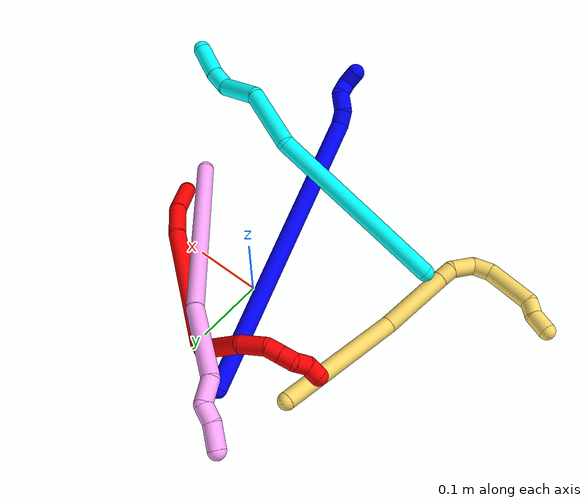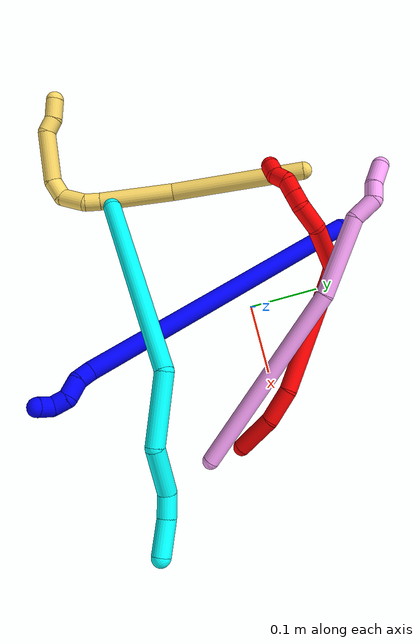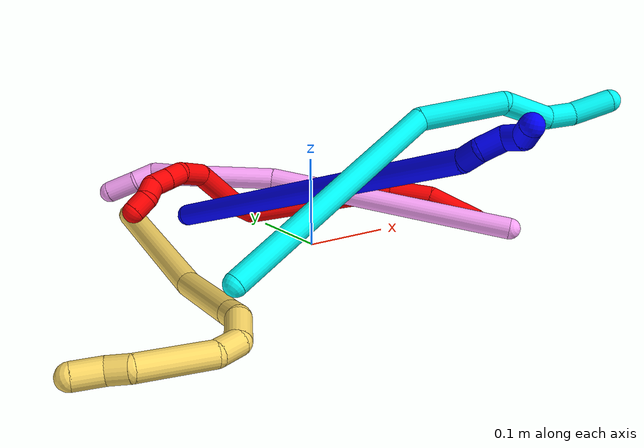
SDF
<sdf version="1.7">
 <world name="default">
  <plugin name="TubeGeneratorPlugin" filename="libtube_generator_plugin.so"/>
  <model name="photoneo_s_sensor">
   <static>1</static>
   <pose>0 0 2 1.57079 1.57079 3.14159</pose>
   <link name="link">
    <inertial><mass>0.1</mass></inertial>
    <sensor name="sensor" type="depth">
     <update_rate>30</update_rate>
     <camera>
      <horizontal_fov>1.22</horizontal_fov>
      <image><width>1920</width><height>1200</height><format>B8G8R8</format></image>
      <clip><near>0.1</near><far>4</far></clip>
      <depth_camera><output>points</output></depth_camera>
     </camera>
     <plugin name="camera_plugin" filename="libgazebo_ros_depth_camera.so">
      <baseline>0.2</baseline>
      <alwaysOn>1</alwaysOn>
      <updateRate>0.0</updateRate>
      <cameraName>camera_ir</cameraName>
      <imageTopicName>/camera/color/image_raw</imageTopicName>
      <cameraInfoTopicName>/camera/color/camera_info</cameraInfoTopicName>
      <depthImageTopicName>/camera/depth/image_raw</depthImageTopicName>
      <depthImageCameraInfoTopicName>/camera/depth/camera_info</depthImageCameraInfoTopicName>
      <pointCloudTopicName>/camera/depth/points</pointCloudTopicName>
      <frameName>fr_optical</frameName>
      <pointCloudCutoff>0.1</pointCloudCutoff>
      <pointCloudCutoffMax>2.0</pointCloudCutoffMax>
      <distortionK1>0</distortionK1>
      <distortionK2>0</distortionK2>
      <distortionK3>0</distortionK3>
      <distortionT1>0</distortionT1>
      <distortionT2>0</distortionT2>
      <CxPrime>0</CxPrime>
      <Cx>0</Cx>
      <Cy>0</Cy>
      <focalLength>0</focalLength>
      <hackBaseline>0</hackBaseline>
     </plugin>
    </sensor>
   </link>
  </model>
  <gravity>0 0 -9.8</gravity>
  <magnetic_field>6e-06 2.3e-05 -4.2e-05</magnetic_field>
  <atmosphere type="adiabatic"/>
  <physics name="default_physics" default="0" type="ode">
   <max_step_size>0.003</max_step_size>
   <real_time_factor>1</real_time_factor>
   <real_time_update_rate>1000</real_time_update_rate>
   <max_contacts>10000</max_contacts>
   <ode>
    <solver>
     <type>quick</type>
     <iters>100</iters>
     <sor>1.3</sor>
     <use_dynamic_moi_rescaling>0</use_dynamic_moi_rescaling>
    </solver>
    <constraints>
     <contact_max_correcting_vel>0</contact_max_correcting_vel>
     <contact_surface_layer>0.001</contact_surface_layer>
     <cfm>0</cfm>
     <erp>0.2</erp>
    </constraints>
   </ode>
  </physics>
  <scene><ambient>0.4 0.4 0.4 1</ambient><background>0.7 0.7 0.7 1</background><shadows>0</shadows></scene>
  <audio><device>default</device></audio>
  <spherical_coordinates>
   <surface_model>EARTH_WGS84</surface_model>
   <latitude_deg>0</latitude_deg>
   <longitude_deg>0</longitude_deg>
   <elevation>0</elevation>
   <heading_deg>0</heading_deg>
  </spherical_coordinates>
  <model name="bin">
   <static>1</static>
   <link name="bottom">
    <collision name="collision-bottom">
     <pose>0 0 -0.01 0 -0 0</pose>
     <geometry><box><size>0.8 0.6 0.02</size></box></geometry>
     <surface>
      <friction><ode><mu>100</mu><mu2>100</mu2></ode></friction>
      <contact><collide_bitmask>65535</collide_bitmask></contact>
     </surface>
    </collision>
   </link>
   <link name="west_wall">
    <collision name="collision-west_wall">
     <pose>-0.41 0 0.1 0 -0 0</pose>
     <geometry><box><size>0.02 0.6 0.2</size></box></geometry>
     <surface>
      <friction><ode><mu>100</mu><mu2>100</mu2></ode></friction>
      <contact><collide_bitmask>65535</collide_bitmask></contact>
     </surface>
    </collision>
   </link>
   <link name="east_wall">
    <collision name="collision-east_wall">
     <pose>0.41 0 0.1 0 -0 0</pose>
     <geometry><box><size>0.02 0.6 0.2</size></box></geometry>
     <surface>
      <friction><ode><mu>100</mu><mu2>100</mu2></ode></friction>
      <contact><collide_bitmask>65535</collide_bitmask></contact>
     </surface>
    </collision>
   </link>
   <link name="south_wall">
    <collision name="collision-south_wall">
     <pose>0 -0.31 0.1 0 -0 0</pose>
     <geometry><box><size>0.8 0.02 0.2</size></box></geometry>
     <surface>
      <friction><ode><mu>100</mu><mu2>100</mu2></ode></friction>
      <contact><collide_bitmask>65535</collide_bitmask></contact>
     </surface>
    </collision>
   </link>
   <link name="north_wall">
    <collision name="collision-north_wall">
     <pose>0 0.31 0.1 0 -0 0</pose>
     <geometry><box><size>0.8 0.02 0.2</size></box></geometry>
     <surface>
      <friction><ode><mu>100</mu><mu2>100</mu2></ode></friction>
      <contact><collide_bitmask>65535</collide_bitmask></contact>
     </surface>
    </collision>
   </link>
  </model>
  <model name="1">
   <static>0</static>
   <link name="1">
    <collision name="collision-cylinder-e_1_1_4">
     <pose>0.045936 -0.171164 0.105301 1.01927 0.224723 0.125957</pose>
     <geometry><cylinder><radius>0.0125</radius><length>0.412289</length></cylinder></geometry>
     <surface>
      <friction><ode><mu>1.16</mu><mu2>1.16</mu2><slip1>0</slip1><slip2>0</slip2></ode></friction>
      <contact><ode><kp>1e+06</kp><kd>1</kd><max_vel>0</max_vel><min_depth>0.001</min_depth></ode></contact>
     </surface>
    </collision>
    <visual name="visual-cylinder-e_1_1_4">
     <pose>0.045936 -0.171164 0.105301 1.01927 0.224723 0.125957</pose>
     <geometry><cylinder><radius>0.0125</radius><length>0.412289</length></cylinder></geometry>
     <material><ambient>0 0 1 1</ambient></material>
    </visual>
    <collision name="collision-cylinder-e_2_4_5">
     <pose>0.094335 -0.348674 0.218533 0.674814 0.237769 0.083761</pose>
     <geometry><cylinder><radius>0.0125</radius><length>0.020903</length></cylinder></geometry>
     <surface>
      <friction><ode><mu>1.16</mu><mu2>1.16</mu2><slip1>0</slip1><slip2>0</slip2></ode></friction>
      <contact><ode><kp>1e+06</kp><kd>1</kd><max_vel>0</max_vel><min_depth>0.001</min_depth></ode></contact>
     </surface>
    </collision>
    <visual name="visual-cylinder-e_2_4_5">
     <pose>0.094335 -0.348674 0.218533 0.674814 0.237769 0.083761</pose>
     <geometry><cylinder><radius>0.0125</radius><length>0.020903</length></cylinder></geometry>
     <material><ambient>0 0 1 1</ambient></material>
    </visual>
    <collision name="collision-cylinder-e_3_5_6">
     <pose>0.104622 -0.360701 0.235051 0.584516 0.649942 0.202048</pose>
     <geometry><cylinder><radius>0.0125</radius><length>0.025864</length></cylinder></geometry>
     <surface>
      <friction><ode><mu>1.16</mu><mu2>1.16</mu2><slip1>0</slip1><slip2>0</slip2></ode></friction>
      <contact><ode><kp>1e+06</kp><kd>1</kd><max_vel>0</max_vel><min_depth>0.001</min_depth></ode></contact>
     </surface>
    </collision>
    <visual name="visual-cylinder-e_3_5_6">
     <pose>0.104622 -0.360701 0.235051 0.584516 0.649942 0.202048</pose>
     <geometry><cylinder><radius>0.0125</radius><length>0.025864</length></cylinder></geometry>
     <material><ambient>0 0 1 1</ambient></material>
    </visual>
    <collision name="collision-cylinder-e_4_6_7">
     <pose>0.114769 -0.375552 0.247385 1.18284 0.230191 0.154975</pose>
     <geometry><cylinder><radius>0.0125</radius><length>0.020348</length></cylinder></geometry>
     <surface>
      <friction><ode><mu>1.16</mu><mu2>1.16</mu2><slip1>0</slip1><slip2>0</slip2></ode></friction>
      <contact><ode><kp>1e+06</kp><kd>1</kd><max_vel>0</max_vel><min_depth>0.001</min_depth></ode></contact>
     </surface>
    </collision>
    <visual name="visual-cylinder-e_4_6_7">
     <pose>0.114769 -0.375552 0.247385 1.18284 0.230191 0.154975</pose>
     <geometry><cylinder><radius>0.0125</radius><length>0.020348</length></cylinder></geometry>
     <material><ambient>0 0 1 1</ambient></material>
    </visual>
    <collision name="collision-cylinder-e_5_7_2">
     <pose>0.113686 -0.390613 0.258861 0.651262 -0.336923 -0.114725</pose>
     <geometry><cylinder><radius>0.0125</radius><length>0.020595</length></cylinder></geometry>
     <surface>
      <friction><ode><mu>1.16</mu><mu2>1.16</mu2><slip1>0</slip1><slip2>0</slip2></ode></friction>
      <contact><ode><kp>1e+06</kp><kd>1</kd><max_vel>0</max_vel><min_depth>0.001</min_depth></ode></contact>
     </surface>
    </collision>
    <visual name="visual-cylinder-e_5_7_2">
     <pose>0.113686 -0.390613 0.258861 0.651262 -0.336923 -0.114725</pose>
     <geometry><cylinder><radius>0.0125</radius><length>0.020595</length></cylinder></geometry>
     <material><ambient>0 0 1 1</ambient></material>
    </visual>
    <collision name="collision-sphere-2">
     <pose>0.110282 -0.396504 0.26659 0 -0 0</pose>
     <geometry><sphere><radius>0.0125</radius></sphere></geometry>
     <surface>
      <friction><ode><mu>1.16</mu><mu2>1.16</mu2><slip1>0</slip1><slip2>0</slip2></ode></friction>
      <contact><ode><kp>1e+06</kp><kd>1</kd><max_vel>0</max_vel><min_depth>0.001</min_depth></ode></contact>
     </surface>
    </collision>
    <visual name="visual-sphere-2">
     <pose>0.110282 -0.396504 0.26659 0 -0 0</pose>
     <geometry><sphere><radius>0.0125</radius></sphere></geometry>
     <material><ambient>0 0 1 1</ambient></material>
    </visual>
    <collision name="collision-sphere-7">
     <pose>0.117091 -0.384721 0.251132 0 -0 0</pose>
     <geometry><sphere><radius>0.0125</radius></sphere></geometry>
     <surface>
      <friction><ode><mu>1.16</mu><mu2>1.16</mu2><slip1>0</slip1><slip2>0</slip2></ode></friction>
      <contact><ode><kp>1e+06</kp><kd>1</kd><max_vel>0</max_vel><min_depth>0.001</min_depth></ode></contact>
     </surface>
    </collision>
    <visual name="visual-sphere-7">
     <pose>0.117091 -0.384721 0.251132 0 -0 0</pose>
     <geometry><sphere><radius>0.0125</radius></sphere></geometry>
     <material><ambient>0 0 1 1</ambient></material>
    </visual>
    <collision name="collision-sphere-6">
     <pose>0.112448 -0.366382 0.243637 0 -0 0</pose>
     <geometry><sphere><radius>0.0125</radius></sphere></geometry>
     <surface>
      <friction><ode><mu>1.16</mu><mu2>1.16</mu2><slip1>0</slip1><slip2>0</slip2></ode></friction>
      <contact><ode><kp>1e+06</kp><kd>1</kd><max_vel>0</max_vel><min_depth>0.001</min_depth></ode></contact>
     </surface>
    </collision>
    <visual name="visual-sphere-6">
     <pose>0.112448 -0.366382 0.243637 0 -0 0</pose>
     <geometry><sphere><radius>0.0125</radius></sphere></geometry>
     <material><ambient>0 0 1 1</ambient></material>
    </visual>
    <collision name="collision-sphere-5">
     <pose>0.096796 -0.35502 0.226465 0 -0 0</pose>
     <geometry><sphere><radius>0.0125</radius></sphere></geometry>
     <surface>
      <friction><ode><mu>1.16</mu><mu2>1.16</mu2><slip1>0</slip1><slip2>0</slip2></ode></friction>
      <contact><ode><kp>1e+06</kp><kd>1</kd><max_vel>0</max_vel><min_depth>0.001</min_depth></ode></contact>
     </surface>
    </collision>
    <visual name="visual-sphere-5">
     <pose>0.096796 -0.35502 0.226465 0 -0 0</pose>
     <geometry><sphere><radius>0.0125</radius></sphere></geometry>
     <material><ambient>0 0 1 1</ambient></material>
    </visual>
    <collision name="collision-sphere-1">
     <geometry><sphere><radius>0.0125</radius></sphere></geometry>
     <surface>
      <friction><ode><mu>1.16</mu><mu2>1.16</mu2><slip1>0</slip1><slip2>0</slip2></ode></friction>
      <contact><ode><kp>1e+06</kp><kd>1</kd><max_vel>0</max_vel><min_depth>0.001</min_depth></ode></contact>
     </surface>
    </collision>
    <visual name="visual-sphere-1">
     <geometry><sphere><radius>0.0125</radius></sphere></geometry>
     <material><ambient>0 0 1 1</ambient></material>
    </visual>
    <collision name="collision-sphere-4">
     <pose>0.091873 -0.342328 0.210602 0 -0 0</pose>
     <geometry><sphere><radius>0.0125</radius></sphere></geometry>
     <surface>
      <friction><ode><mu>1.16</mu><mu2>1.16</mu2><slip1>0</slip1><slip2>0</slip2></ode></friction>
      <contact><ode><kp>1e+06</kp><kd>1</kd><max_vel>0</max_vel><min_depth>0.001</min_depth></ode></contact>
     </surface>
    </collision>
    <visual name="visual-sphere-4">
     <pose>0.091873 -0.342328 0.210602 0 -0 0</pose>
     <geometry><sphere><radius>0.0125</radius></sphere></geometry>
     <material><ambient>0 0 1 1</ambient></material>
    </visual>
    <inertial>
     <pose>0.056587 -0.205747 0.128854 0 -0 0</pose>
     <mass>0.5</mass>
     <inertia>
      <ixx>0.006396</ixx>
      <ixy>0</ixy>
      <ixz>0</ixz>
      <iyy>0.003876</iyy>
      <iyz>0</iyz>
      <izz>0.003581</izz>
     </inertia>
    </inertial>
   </link>
   <pose>-0.07746 0.154571 0.011491 0.186928 0.157801 -0.029826</pose>
  </model>
  <model name="2">
   <static>0</static>
   <link name="2">
    <collision name="collision-cylinder-e_1_1_4">
     <pose>-0.000257 0.010884 0.028998 -0.359063 -0.008298 0.001506</pose>
     <geometry><cylinder><radius>0.0125</radius><length>0.061949</length></cylinder></geometry>
     <surface>
      <friction><ode><mu>1.16</mu><mu2>1.16</mu2><slip1>0</slip1><slip2>0</slip2></ode></friction>
      <contact><ode><kp>1e+06</kp><kd>1</kd><max_vel>0</max_vel><min_depth>0.001</min_depth></ode></contact>
     </surface>
    </collision>
    <visual name="visual-cylinder-e_1_1_4">
     <pose>-0.000257 0.010884 0.028998 -0.359063 -0.008298 0.001506</pose>
     <geometry><cylinder><radius>0.0125</radius><length>0.061949</length></cylinder></geometry>
     <material><ambient>1 0 0 1</ambient></material>
    </visual>
    <collision name="collision-cylinder-e_2_4_5">
     <pose>-0.008454 0.031439 0.079686 -0.419404 -0.322665 0.069247</pose>
     <geometry><cylinder><radius>0.0125</radius><length>0.050081</length></cylinder></geometry>
     <surface>
      <friction><ode><mu>1.16</mu><mu2>1.16</mu2><slip1>0</slip1><slip2>0</slip2></ode></friction>
      <contact><ode><kp>1e+06</kp><kd>1</kd><max_vel>0</max_vel><min_depth>0.001</min_depth></ode></contact>
     </surface>
    </collision>
    <visual name="visual-cylinder-e_2_4_5">
     <pose>-0.008454 0.031439 0.079686 -0.419404 -0.322665 0.069247</pose>
     <geometry><cylinder><radius>0.0125</radius><length>0.050081</length></cylinder></geometry>
     <material><ambient>1 0 0 1</ambient></material>
    </visual>
    <collision name="collision-cylinder-e_3_5_6">
     <pose>-0.067409 0.076868 0.160927 -0.540768 -0.633456 0.181195</pose>
     <geometry><cylinder><radius>0.0125</radius><length>0.172365</length></cylinder></geometry>
     <surface>
      <friction><ode><mu>1.16</mu><mu2>1.16</mu2><slip1>0</slip1><slip2>0</slip2></ode></friction>
      <contact><ode><kp>1e+06</kp><kd>1</kd><max_vel>0</max_vel><min_depth>0.001</min_depth></ode></contact>
     </surface>
    </collision>
    <visual name="visual-cylinder-e_3_5_6">
     <pose>-0.067409 0.076868 0.160927 -0.540768 -0.633456 0.181195</pose>
     <geometry><cylinder><radius>0.0125</radius><length>0.172365</length></cylinder></geometry>
     <material><ambient>1 0 0 1</ambient></material>
    </visual>
    <collision name="collision-cylinder-e_4_6_7">
     <pose>-0.120674 0.111767 0.23021 0.088097 -0.226425 -0.010023</pose>
     <geometry><cylinder><radius>0.0125</radius><length>0.020054</length></cylinder></geometry>
     <surface>
      <friction><ode><mu>1.16</mu><mu2>1.16</mu2><slip1>0</slip1><slip2>0</slip2></ode></friction>
      <contact><ode><kp>1e+06</kp><kd>1</kd><max_vel>0</max_vel><min_depth>0.001</min_depth></ode></contact>
     </surface>
    </collision>
    <visual name="visual-cylinder-e_4_6_7">
     <pose>-0.120674 0.111767 0.23021 0.088097 -0.226425 -0.010023</pose>
     <geometry><cylinder><radius>0.0125</radius><length>0.020054</length></cylinder></geometry>
     <material><ambient>1 0 0 1</ambient></material>
    </visual>
    <collision name="collision-cylinder-e_5_7_8">
     <pose>-0.130965 0.085162 0.267723 0.747409 -0.20919 -0.082284</pose>
     <geometry><cylinder><radius>0.0125</radius><length>0.077437</length></cylinder></geometry>
     <surface>
      <friction><ode><mu>1.16</mu><mu2>1.16</mu2><slip1>0</slip1><slip2>0</slip2></ode></friction>
      <contact><ode><kp>1e+06</kp><kd>1</kd><max_vel>0</max_vel><min_depth>0.001</min_depth></ode></contact>
     </surface>
    </collision>
    <visual name="visual-cylinder-e_5_7_8">
     <pose>-0.130965 0.085162 0.267723 0.747409 -0.20919 -0.082284</pose>
     <geometry><cylinder><radius>0.0125</radius><length>0.077437</length></cylinder></geometry>
     <material><ambient>1 0 0 1</ambient></material>
    </visual>
    <collision name="collision-cylinder-e_6_8_9">
     <pose>-0.150104 0.047519 0.304554 0.920436 -0.638592 -0.32489</pose>
     <geometry><cylinder><radius>0.0125</radius><length>0.037239</length></cylinder></geometry>
     <surface>
      <friction><ode><mu>1.16</mu><mu2>1.16</mu2><slip1>0</slip1><slip2>0</slip2></ode></friction>
      <contact><ode><kp>1e+06</kp><kd>1</kd><max_vel>0</max_vel><min_depth>0.001</min_depth></ode></contact>
     </surface>
    </collision>
    <visual name="visual-cylinder-e_6_8_9">
     <pose>-0.150104 0.047519 0.304554 0.920436 -0.638592 -0.32489</pose>
     <geometry><cylinder><radius>0.0125</radius><length>0.037239</length></cylinder></geometry>
     <material><ambient>1 0 0 1</ambient></material>
    </visual>
    <collision name="collision-cylinder-e_7_9_10">
     <pose>-0.170246 0.032861 0.317388 0.630274 -1.09314 -0.391592</pose>
     <geometry><cylinder><radius>0.0125</radius><length>0.020366</length></cylinder></geometry>
     <surface>
      <friction><ode><mu>1.16</mu><mu2>1.16</mu2><slip1>0</slip1><slip2>0</slip2></ode></friction>
      <contact><ode><kp>1e+06</kp><kd>1</kd><max_vel>0</max_vel><min_depth>0.001</min_depth></ode></contact>
     </surface>
    </collision>
    <visual name="visual-cylinder-e_7_9_10">
     <pose>-0.170246 0.032861 0.317388 0.630274 -1.09314 -0.391592</pose>
     <geometry><cylinder><radius>0.0125</radius><length>0.020366</length></cylinder></geometry>
     <material><ambient>1 0 0 1</ambient></material>
    </visual>
    <collision name="collision-cylinder-e_8_10_11">
     <pose>-0.188247 0.027369 0.324975 0.622949 -1.08889 -0.385048</pose>
     <geometry><cylinder><radius>0.0125</radius><length>0.02022</length></cylinder></geometry>
     <surface>
      <friction><ode><mu>1.16</mu><mu2>1.16</mu2><slip1>0</slip1><slip2>0</slip2></ode></friction>
      <contact><ode><kp>1e+06</kp><kd>1</kd><max_vel>0</max_vel><min_depth>0.001</min_depth></ode></contact>
     </surface>
    </collision>
    <visual name="visual-cylinder-e_8_10_11">
     <pose>-0.188247 0.027369 0.324975 0.622949 -1.08889 -0.385048</pose>
     <geometry><cylinder><radius>0.0125</radius><length>0.02022</length></cylinder></geometry>
     <material><ambient>1 0 0 1</ambient></material>
    </visual>
    <collision name="collision-cylinder-e_9_11_12">
     <pose>-0.206426 0.021173 0.326758 2.09947 -1.16058 -1.70335</pose>
     <geometry><cylinder><radius>0.0125</radius><length>0.020108</length></cylinder></geometry>
     <surface>
      <friction><ode><mu>1.16</mu><mu2>1.16</mu2><slip1>0</slip1><slip2>0</slip2></ode></friction>
      <contact><ode><kp>1e+06</kp><kd>1</kd><max_vel>0</max_vel><min_depth>0.001</min_depth></ode></contact>
     </surface>
    </collision>
    <visual name="visual-cylinder-e_9_11_12">
     <pose>-0.206426 0.021173 0.326758 2.09947 -1.16058 -1.70335</pose>
     <geometry><cylinder><radius>0.0125</radius><length>0.020108</length></cylinder></geometry>
     <material><ambient>1 0 0 1</ambient></material>
    </visual>
    <collision name="collision-cylinder-e_10_12_2">
     <pose>-0.225642 0.018543 0.325834 -0.648606 -1.43381 0.570061</pose>
     <geometry><cylinder><radius>0.0125</radius><length>0.020182</length></cylinder></geometry>
     <surface>
      <friction><ode><mu>1.16</mu><mu2>1.16</mu2><slip1>0</slip1><slip2>0</slip2></ode></friction>
      <contact><ode><kp>1e+06</kp><kd>1</kd><max_vel>0</max_vel><min_depth>0.001</min_depth></ode></contact>
     </surface>
    </collision>
    <visual name="visual-cylinder-e_10_12_2">
     <pose>-0.225642 0.018543 0.325834 -0.648606 -1.43381 0.570061</pose>
     <geometry><cylinder><radius>0.0125</radius><length>0.020182</length></cylinder></geometry>
     <material><ambient>1 0 0 1</ambient></material>
    </visual>
    <collision name="collision-sphere-2">
     <pose>-0.235638 0.019375 0.326932 0 -0 0</pose>
     <geometry><sphere><radius>0.0125</radius></sphere></geometry>
     <surface>
      <friction><ode><mu>1.16</mu><mu2>1.16</mu2><slip1>0</slip1><slip2>0</slip2></ode></friction>
      <contact><ode><kp>1e+06</kp><kd>1</kd><max_vel>0</max_vel><min_depth>0.001</min_depth></ode></contact>
     </surface>
    </collision>
    <visual name="visual-sphere-2">
     <pose>-0.235638 0.019375 0.326932 0 -0 0</pose>
     <geometry><sphere><radius>0.0125</radius></sphere></geometry>
     <material><ambient>1 0 0 1</ambient></material>
    </visual>
    <collision name="collision-sphere-12">
     <pose>-0.215646 0.017711 0.324736 0 -0 0</pose>
     <geometry><sphere><radius>0.0125</radius></sphere></geometry>
     <surface>
      <friction><ode><mu>1.16</mu><mu2>1.16</mu2><slip1>0</slip1><slip2>0</slip2></ode></friction>
      <contact><ode><kp>1e+06</kp><kd>1</kd><max_vel>0</max_vel><min_depth>0.001</min_depth></ode></contact>
     </surface>
    </collision>
    <visual name="visual-sphere-12">
     <pose>-0.215646 0.017711 0.324736 0 -0 0</pose>
     <geometry><sphere><radius>0.0125</radius></sphere></geometry>
     <material><ambient>1 0 0 1</ambient></material>
    </visual>
    <collision name="collision-sphere-11">
     <pose>-0.197206 0.024635 0.32878 0 -0 0</pose>
     <geometry><sphere><radius>0.0125</radius></sphere></geometry>
     <surface>
      <friction><ode><mu>1.16</mu><mu2>1.16</mu2><slip1>0</slip1><slip2>0</slip2></ode></friction>
      <contact><ode><kp>1e+06</kp><kd>1</kd><max_vel>0</max_vel><min_depth>0.001</min_depth></ode></contact>
     </surface>
    </collision>
    <visual name="visual-sphere-11">
     <pose>-0.197206 0.024635 0.32878 0 -0 0</pose>
     <geometry><sphere><radius>0.0125</radius></sphere></geometry>
     <material><ambient>1 0 0 1</ambient></material>
    </visual>
    <collision name="collision-sphere-10">
     <pose>-0.179289 0.030103 0.321169 0 -0 0</pose>
     <geometry><sphere><radius>0.0125</radius></sphere></geometry>
     <surface>
      <friction><ode><mu>1.16</mu><mu2>1.16</mu2><slip1>0</slip1><slip2>0</slip2></ode></friction>
      <contact><ode><kp>1e+06</kp><kd>1</kd><max_vel>0</max_vel><min_depth>0.001</min_depth></ode></contact>
     </surface>
    </collision>
    <visual name="visual-sphere-10">
     <pose>-0.179289 0.030103 0.321169 0 -0 0</pose>
     <geometry><sphere><radius>0.0125</radius></sphere></geometry>
     <material><ambient>1 0 0 1</ambient></material>
    </visual>
    <collision name="collision-sphere-9">
     <pose>-0.161203 0.03562 0.313606 0 -0 0</pose>
     <geometry><sphere><radius>0.0125</radius></sphere></geometry>
     <surface>
      <friction><ode><mu>1.16</mu><mu2>1.16</mu2><slip1>0</slip1><slip2>0</slip2></ode></friction>
      <contact><ode><kp>1e+06</kp><kd>1</kd><max_vel>0</max_vel><min_depth>0.001</min_depth></ode></contact>
     </surface>
    </collision>
    <visual name="visual-sphere-9">
     <pose>-0.161203 0.03562 0.313606 0 -0 0</pose>
     <geometry><sphere><radius>0.0125</radius></sphere></geometry>
     <material><ambient>1 0 0 1</ambient></material>
    </visual>
    <collision name="collision-sphere-4">
     <pose>-0.000514 0.021768 0.057997 0 -0 0</pose>
     <geometry><sphere><radius>0.0125</radius></sphere></geometry>
     <surface>
      <friction><ode><mu>1.16</mu><mu2>1.16</mu2><slip1>0</slip1><slip2>0</slip2></ode></friction>
      <contact><ode><kp>1e+06</kp><kd>1</kd><max_vel>0</max_vel><min_depth>0.001</min_depth></ode></contact>
     </surface>
    </collision>
    <visual name="visual-sphere-4">
     <pose>-0.000514 0.021768 0.057997 0 -0 0</pose>
     <geometry><sphere><radius>0.0125</radius></sphere></geometry>
     <material><ambient>1 0 0 1</ambient></material>
    </visual>
    <collision name="collision-sphere-1">
     <geometry><sphere><radius>0.0125</radius></sphere></geometry>
     <surface>
      <friction><ode><mu>1.16</mu><mu2>1.16</mu2><slip1>0</slip1><slip2>0</slip2></ode></friction>
      <contact><ode><kp>1e+06</kp><kd>1</kd><max_vel>0</max_vel><min_depth>0.001</min_depth></ode></contact>
     </surface>
    </collision>
    <visual name="visual-sphere-1">
     <geometry><sphere><radius>0.0125</radius></sphere></geometry>
     <material><ambient>1 0 0 1</ambient></material>
    </visual>
    <collision name="collision-sphere-8">
     <pose>-0.139006 0.059417 0.295502 0 -0 0</pose>
     <geometry><sphere><radius>0.0125</radius></sphere></geometry>
     <surface>
      <friction><ode><mu>1.16</mu><mu2>1.16</mu2><slip1>0</slip1><slip2>0</slip2></ode></friction>
      <contact><ode><kp>1e+06</kp><kd>1</kd><max_vel>0</max_vel><min_depth>0.001</min_depth></ode></contact>
     </surface>
    </collision>
    <visual name="visual-sphere-8">
     <pose>-0.139006 0.059417 0.295502 0 -0 0</pose>
     <geometry><sphere><radius>0.0125</radius></sphere></geometry>
     <material><ambient>1 0 0 1</ambient></material>
    </visual>
    <collision name="collision-sphere-5">
     <pose>-0.016394 0.041109 0.101376 0 -0 0</pose>
     <geometry><sphere><radius>0.0125</radius></sphere></geometry>
     <surface>
      <friction><ode><mu>1.16</mu><mu2>1.16</mu2><slip1>0</slip1><slip2>0</slip2></ode></friction>
      <contact><ode><kp>1e+06</kp><kd>1</kd><max_vel>0</max_vel><min_depth>0.001</min_depth></ode></contact>
     </surface>
    </collision>
    <visual name="visual-sphere-5">
     <pose>-0.016394 0.041109 0.101376 0 -0 0</pose>
     <geometry><sphere><radius>0.0125</radius></sphere></geometry>
     <material><ambient>1 0 0 1</ambient></material>
    </visual>
    <collision name="collision-sphere-6">
     <pose>-0.118423 0.112626 0.220477 0 -0 0</pose>
     <geometry><sphere><radius>0.0125</radius></sphere></geometry>
     <surface>
      <friction><ode><mu>1.16</mu><mu2>1.16</mu2><slip1>0</slip1><slip2>0</slip2></ode></friction>
      <contact><ode><kp>1e+06</kp><kd>1</kd><max_vel>0</max_vel><min_depth>0.001</min_depth></ode></contact>
     </surface>
    </collision>
    <visual name="visual-sphere-6">
     <pose>-0.118423 0.112626 0.220477 0 -0 0</pose>
     <geometry><sphere><radius>0.0125</radius></sphere></geometry>
     <material><ambient>1 0 0 1</ambient></material>
    </visual>
    <collision name="collision-sphere-7">
     <pose>-0.122925 0.110907 0.239944 0 -0 0</pose>
     <geometry><sphere><radius>0.0125</radius></sphere></geometry>
     <surface>
      <friction><ode><mu>1.16</mu><mu2>1.16</mu2><slip1>0</slip1><slip2>0</slip2></ode></friction>
      <contact><ode><kp>1e+06</kp><kd>1</kd><max_vel>0</max_vel><min_depth>0.001</min_depth></ode></contact>
     </surface>
    </collision>
    <visual name="visual-sphere-7">
     <pose>-0.122925 0.110907 0.239944 0 -0 0</pose>
     <geometry><sphere><radius>0.0125</radius></sphere></geometry>
     <material><ambient>1 0 0 1</ambient></material>
    </visual>
    <inertial>
     <pose>-0.092375 0.056253 0.192792 0 -0 0</pose>
     <mass>0.5</mass>
     <inertia>
      <ixx>0.000465</ixx>
      <ixy>0</ixy>
      <ixz>0</ixz>
      <iyy>0.000523</iyy>
      <iyz>0</iyz>
      <izz>0.000144</izz>
     </inertia>
    </inertial>
   </link>
   <pose>0.19384 -0.065754 0.011532 -0.723696 -0.653508 0.258467</pose>
  </model>
  <model name="3">
   <static>0</static>
   <link name="3">
    <collision name="collision-cylinder-e_1_1_4">
     <pose>0.020537 -0.010888 0.130511 0.083232 0.15555 0.00649</pose>
     <geometry><cylinder><radius>0.0125</radius><length>0.265129</length></cylinder></geometry>
     <surface>
      <friction><ode><mu>1.16</mu><mu2>1.16</mu2><slip1>0</slip1><slip2>0</slip2></ode></friction>
      <contact><ode><kp>1e+06</kp><kd>1</kd><max_vel>0</max_vel><min_depth>0.001</min_depth></ode></contact>
     </surface>
    </collision>
    <visual name="visual-cylinder-e_1_1_4">
     <pose>0.020537 -0.010888 0.130511 0.083232 0.15555 0.00649</pose>
     <geometry><cylinder><radius>0.0125</radius><length>0.265129</length></cylinder></geometry>
     <material><ambient>0.003922 1 0.996078 1</ambient></material>
    </visual>
    <collision name="collision-cylinder-e_2_4_5">
     <pose>0.064748 -0.041746 0.295451 0.525599 0.536562 0.147644</pose>
     <geometry><cylinder><radius>0.0125</radius><length>0.09262</length></cylinder></geometry>
     <surface>
      <friction><ode><mu>1.16</mu><mu2>1.16</mu2><slip1>0</slip1><slip2>0</slip2></ode></friction>
      <contact><ode><kp>1e+06</kp><kd>1</kd><max_vel>0</max_vel><min_depth>0.001</min_depth></ode></contact>
     </surface>
    </collision>
    <visual name="visual-cylinder-e_2_4_5">
     <pose>0.064748 -0.041746 0.295451 0.525599 0.536562 0.147644</pose>
     <geometry><cylinder><radius>0.0125</radius><length>0.09262</length></cylinder></geometry>
     <material><ambient>0.003922 1 0.996078 1</ambient></material>
    </visual>
    <collision name="collision-cylinder-e_3_5_6">
     <pose>0.115843 -0.061602 0.347714 -0.006391 0.994202 -0.003468</pose>
     <geometry><cylinder><radius>0.0125</radius><length>0.065422</length></cylinder></geometry>
     <surface>
      <friction><ode><mu>1.16</mu><mu2>1.16</mu2><slip1>0</slip1><slip2>0</slip2></ode></friction>
      <contact><ode><kp>1e+06</kp><kd>1</kd><max_vel>0</max_vel><min_depth>0.001</min_depth></ode></contact>
     </surface>
    </collision>
    <visual name="visual-cylinder-e_3_5_6">
     <pose>0.115843 -0.061602 0.347714 -0.006391 0.994202 -0.003468</pose>
     <geometry><cylinder><radius>0.0125</radius><length>0.065422</length></cylinder></geometry>
     <material><ambient>0.003922 1 0.996078 1</ambient></material>
    </visual>
    <collision name="collision-cylinder-e_4_6_7">
     <pose>0.152191 -0.066564 0.377193 0.411001 0.612409 0.131607</pose>
     <geometry><cylinder><radius>0.0125</radius><length>0.031054</length></cylinder></geometry>
     <surface>
      <friction><ode><mu>1.16</mu><mu2>1.16</mu2><slip1>0</slip1><slip2>0</slip2></ode></friction>
      <contact><ode><kp>1e+06</kp><kd>1</kd><max_vel>0</max_vel><min_depth>0.001</min_depth></ode></contact>
     </surface>
    </collision>
    <visual name="visual-cylinder-e_4_6_7">
     <pose>0.152191 -0.066564 0.377193 0.411001 0.612409 0.131607</pose>
     <geometry><cylinder><radius>0.0125</radius><length>0.031054</length></cylinder></geometry>
     <material><ambient>0.003922 1 0.996078 1</ambient></material>
    </visual>
    <collision name="collision-cylinder-e_5_7_2">
     <pose>0.169862 -0.082512 0.406983 0.539889 0.392073 0.109787</pose>
     <geometry><cylinder><radius>0.0125</radius><length>0.045775</length></cylinder></geometry>
     <surface>
      <friction><ode><mu>1.16</mu><mu2>1.16</mu2><slip1>0</slip1><slip2>0</slip2></ode></friction>
      <contact><ode><kp>1e+06</kp><kd>1</kd><max_vel>0</max_vel><min_depth>0.001</min_depth></ode></contact>
     </surface>
    </collision>
    <visual name="visual-cylinder-e_5_7_2">
     <pose>0.169862 -0.082512 0.406983 0.539889 0.392073 0.109787</pose>
     <geometry><cylinder><radius>0.0125</radius><length>0.045775</length></cylinder></geometry>
     <material><ambient>0.003922 1 0.996078 1</ambient></material>
    </visual>
    <collision name="collision-sphere-2">
     <pose>0.178607 -0.093385 0.425125 0 -0 0</pose>
     <geometry><sphere><radius>0.0125</radius></sphere></geometry>
     <surface>
      <friction><ode><mu>1.16</mu><mu2>1.16</mu2><slip1>0</slip1><slip2>0</slip2></ode></friction>
      <contact><ode><kp>1e+06</kp><kd>1</kd><max_vel>0</max_vel><min_depth>0.001</min_depth></ode></contact>
     </surface>
    </collision>
    <visual name="visual-sphere-2">
     <pose>0.178607 -0.093385 0.425125 0 -0 0</pose>
     <geometry><sphere><radius>0.0125</radius></sphere></geometry>
     <material><ambient>0.003922 1 0.996078 1</ambient></material>
    </visual>
    <collision name="collision-sphere-7">
     <pose>0.161116 -0.07164 0.388841 0 -0 0</pose>
     <geometry><sphere><radius>0.0125</radius></sphere></geometry>
     <surface>
      <friction><ode><mu>1.16</mu><mu2>1.16</mu2><slip1>0</slip1><slip2>0</slip2></ode></friction>
      <contact><ode><kp>1e+06</kp><kd>1</kd><max_vel>0</max_vel><min_depth>0.001</min_depth></ode></contact>
     </surface>
    </collision>
    <visual name="visual-sphere-7">
     <pose>0.161116 -0.07164 0.388841 0 -0 0</pose>
     <geometry><sphere><radius>0.0125</radius></sphere></geometry>
     <material><ambient>0.003922 1 0.996078 1</ambient></material>
    </visual>
    <collision name="collision-sphere-6">
     <pose>0.143265 -0.061488 0.365546 0 -0 0</pose>
     <geometry><sphere><radius>0.0125</radius></sphere></geometry>
     <surface>
      <friction><ode><mu>1.16</mu><mu2>1.16</mu2><slip1>0</slip1><slip2>0</slip2></ode></friction>
      <contact><ode><kp>1e+06</kp><kd>1</kd><max_vel>0</max_vel><min_depth>0.001</min_depth></ode></contact>
     </surface>
    </collision>
    <visual name="visual-sphere-6">
     <pose>0.143265 -0.061488 0.365546 0 -0 0</pose>
     <geometry><sphere><radius>0.0125</radius></sphere></geometry>
     <material><ambient>0.003922 1 0.996078 1</ambient></material>
    </visual>
    <collision name="collision-sphere-5">
     <pose>0.088421 -0.061716 0.329881 0 -0 0</pose>
     <geometry><sphere><radius>0.0125</radius></sphere></geometry>
     <surface>
      <friction><ode><mu>1.16</mu><mu2>1.16</mu2><slip1>0</slip1><slip2>0</slip2></ode></friction>
      <contact><ode><kp>1e+06</kp><kd>1</kd><max_vel>0</max_vel><min_depth>0.001</min_depth></ode></contact>
     </surface>
    </collision>
    <visual name="visual-sphere-5">
     <pose>0.088421 -0.061716 0.329881 0 -0 0</pose>
     <geometry><sphere><radius>0.0125</radius></sphere></geometry>
     <material><ambient>0.003922 1 0.996078 1</ambient></material>
    </visual>
    <collision name="collision-sphere-1">
     <geometry><sphere><radius>0.0125</radius></sphere></geometry>
     <surface>
      <friction><ode><mu>1.16</mu><mu2>1.16</mu2><slip1>0</slip1><slip2>0</slip2></ode></friction>
      <contact><ode><kp>1e+06</kp><kd>1</kd><max_vel>0</max_vel><min_depth>0.001</min_depth></ode></contact>
     </surface>
    </collision>
    <visual name="visual-sphere-1">
     <geometry><sphere><radius>0.0125</radius></sphere></geometry>
     <material><ambient>0.003922 1 0.996078 1</ambient></material>
    </visual>
    <collision name="collision-sphere-4">
     <pose>0.041075 -0.021776 0.261021 0 -0 0</pose>
     <geometry><sphere><radius>0.0125</radius></sphere></geometry>
     <surface>
      <friction><ode><mu>1.16</mu><mu2>1.16</mu2><slip1>0</slip1><slip2>0</slip2></ode></friction>
      <contact><ode><kp>1e+06</kp><kd>1</kd><max_vel>0</max_vel><min_depth>0.001</min_depth></ode></contact>
     </surface>
    </collision>
    <visual name="visual-sphere-4">
     <pose>0.041075 -0.021776 0.261021 0 -0 0</pose>
     <geometry><sphere><radius>0.0125</radius></sphere></geometry>
     <material><ambient>0.003922 1 0.996078 1</ambient></material>
    </visual>
    <inertial>
     <pose>0.063044 -0.033255 0.230116 0 -0 0</pose>
     <mass>0.5</mass>
     <inertia>
      <ixx>0.001664</ixx>
      <ixy>0</ixy>
      <ixz>0</ixz>
      <iyy>0.001671</iyy>
      <iyz>0</iyz>
      <izz>-0.000108</izz>
     </inertia>
    </inertial>
   </link>
   <pose>-0.186606 -0.154653 0.038423 -0.426423 0.8918 -0.288876</pose>
  </model>
  <model name="4">
   <static>0</static>
   <link name="4">
    <collision name="collision-cylinder-e_1_1_4">
     <pose>-0.064223 0.053898 0.118122 -0.428073 -0.459351 0.101554</pose>
     <geometry><cylinder><radius>0.0125</radius><length>0.289707</length></cylinder></geometry>
     <surface>
      <friction><ode><mu>1.16</mu><mu2>1.16</mu2><slip1>0</slip1><slip2>0</slip2></ode></friction>
      <contact><ode><kp>1e+06</kp><kd>1</kd><max_vel>0</max_vel><min_depth>0.001</min_depth></ode></contact>
     </surface>
    </collision>
    <visual name="visual-cylinder-e_1_1_4">
     <pose>-0.064223 0.053898 0.118122 -0.428073 -0.459351 0.101554</pose>
     <geometry><cylinder><radius>0.0125</radius><length>0.289707</length></cylinder></geometry>
     <material><ambient>1 0.65098 0.996078 1</ambient></material>
    </visual>
    <collision name="collision-cylinder-e_2_4_5">
     <pose>-0.146204 0.140254 0.27935 -0.645406 -0.317924 0.107113</pose>
     <geometry><cylinder><radius>0.0125</radius><length>0.113612</length></cylinder></geometry>
     <surface>
      <friction><ode><mu>1.16</mu><mu2>1.16</mu2><slip1>0</slip1><slip2>0</slip2></ode></friction>
      <contact><ode><kp>1e+06</kp><kd>1</kd><max_vel>0</max_vel><min_depth>0.001</min_depth></ode></contact>
     </surface>
    </collision>
    <visual name="visual-cylinder-e_2_4_5">
     <pose>-0.146204 0.140254 0.27935 -0.645406 -0.317924 0.107113</pose>
     <geometry><cylinder><radius>0.0125</radius><length>0.113612</length></cylinder></geometry>
     <material><ambient>1 0.65098 0.996078 1</ambient></material>
    </visual>
    <collision name="collision-cylinder-e_3_5_6">
     <pose>-0.169154 0.175585 0.339743 -0.164715 -0.288086 0.023944</pose>
     <geometry><cylinder><radius>0.0125</radius><length>0.036556</length></cylinder></geometry>
     <surface>
      <friction><ode><mu>1.16</mu><mu2>1.16</mu2><slip1>0</slip1><slip2>0</slip2></ode></friction>
      <contact><ode><kp>1e+06</kp><kd>1</kd><max_vel>0</max_vel><min_depth>0.001</min_depth></ode></contact>
     </surface>
    </collision>
    <visual name="visual-cylinder-e_3_5_6">
     <pose>-0.169154 0.175585 0.339743 -0.164715 -0.288086 0.023944</pose>
     <geometry><cylinder><radius>0.0125</radius><length>0.036556</length></cylinder></geometry>
     <material><ambient>1 0.65098 0.996078 1</ambient></material>
    </visual>
    <collision name="collision-cylinder-e_4_6_7">
     <pose>-0.172732 0.187565 0.365459 -0.824079 0.12942 -0.056628</pose>
     <geometry><cylinder><radius>0.0125</radius><length>0.025025</length></cylinder></geometry>
     <surface>
      <friction><ode><mu>1.16</mu><mu2>1.16</mu2><slip1>0</slip1><slip2>0</slip2></ode></friction>
      <contact><ode><kp>1e+06</kp><kd>1</kd><max_vel>0</max_vel><min_depth>0.001</min_depth></ode></contact>
     </surface>
    </collision>
    <visual name="visual-cylinder-e_4_6_7">
     <pose>-0.172732 0.187565 0.365459 -0.824079 0.12942 -0.056628</pose>
     <geometry><cylinder><radius>0.0125</radius><length>0.025025</length></cylinder></geometry>
     <material><ambient>1 0.65098 0.996078 1</ambient></material>
    </visual>
    <collision name="collision-cylinder-e_5_7_2">
     <pose>-0.169138 0.205701 0.388805 -0.54431 0.113015 -0.031571</pose>
     <geometry><cylinder><radius>0.0125</radius><length>0.035101</length></cylinder></geometry>
     <surface>
      <friction><ode><mu>1.16</mu><mu2>1.16</mu2><slip1>0</slip1><slip2>0</slip2></ode></friction>
      <contact><ode><kp>1e+06</kp><kd>1</kd><max_vel>0</max_vel><min_depth>0.001</min_depth></ode></contact>
     </surface>
    </collision>
    <visual name="visual-cylinder-e_5_7_2">
     <pose>-0.169138 0.205701 0.388805 -0.54431 0.113015 -0.031571</pose>
     <geometry><cylinder><radius>0.0125</radius><length>0.035101</length></cylinder></geometry>
     <material><ambient>1 0.65098 0.996078 1</ambient></material>
    </visual>
    <collision name="collision-sphere-2">
     <pose>-0.167159 0.214731 0.403723 0 -0 0</pose>
     <geometry><sphere><radius>0.0125</radius></sphere></geometry>
     <surface>
      <friction><ode><mu>1.16</mu><mu2>1.16</mu2><slip1>0</slip1><slip2>0</slip2></ode></friction>
      <contact><ode><kp>1e+06</kp><kd>1</kd><max_vel>0</max_vel><min_depth>0.001</min_depth></ode></contact>
     </surface>
    </collision>
    <visual name="visual-sphere-2">
     <pose>-0.167159 0.214731 0.403723 0 -0 0</pose>
     <geometry><sphere><radius>0.0125</radius></sphere></geometry>
     <material><ambient>1 0.65098 0.996078 1</ambient></material>
    </visual>
    <collision name="collision-sphere-7">
     <pose>-0.171117 0.196671 0.373886 0 -0 0</pose>
     <geometry><sphere><radius>0.0125</radius></sphere></geometry>
     <surface>
      <friction><ode><mu>1.16</mu><mu2>1.16</mu2><slip1>0</slip1><slip2>0</slip2></ode></friction>
      <contact><ode><kp>1e+06</kp><kd>1</kd><max_vel>0</max_vel><min_depth>0.001</min_depth></ode></contact>
     </surface>
    </collision>
    <visual name="visual-sphere-7">
     <pose>-0.171117 0.196671 0.373886 0 -0 0</pose>
     <geometry><sphere><radius>0.0125</radius></sphere></geometry>
     <material><ambient>1 0.65098 0.996078 1</ambient></material>
    </visual>
    <collision name="collision-sphere-6">
     <pose>-0.174347 0.178459 0.357031 0 -0 0</pose>
     <geometry><sphere><radius>0.0125</radius></sphere></geometry>
     <surface>
      <friction><ode><mu>1.16</mu><mu2>1.16</mu2><slip1>0</slip1><slip2>0</slip2></ode></friction>
      <contact><ode><kp>1e+06</kp><kd>1</kd><max_vel>0</max_vel><min_depth>0.001</min_depth></ode></contact>
     </surface>
    </collision>
    <visual name="visual-sphere-6">
     <pose>-0.174347 0.178459 0.357031 0 -0 0</pose>
     <geometry><sphere><radius>0.0125</radius></sphere></geometry>
     <material><ambient>1 0.65098 0.996078 1</ambient></material>
    </visual>
    <collision name="collision-sphere-5">
     <pose>-0.163961 0.172712 0.322456 0 -0 0</pose>
     <geometry><sphere><radius>0.0125</radius></sphere></geometry>
     <surface>
      <friction><ode><mu>1.16</mu><mu2>1.16</mu2><slip1>0</slip1><slip2>0</slip2></ode></friction>
      <contact><ode><kp>1e+06</kp><kd>1</kd><max_vel>0</max_vel><min_depth>0.001</min_depth></ode></contact>
     </surface>
    </collision>
    <visual name="visual-sphere-5">
     <pose>-0.163961 0.172712 0.322456 0 -0 0</pose>
     <geometry><sphere><radius>0.0125</radius></sphere></geometry>
     <material><ambient>1 0.65098 0.996078 1</ambient></material>
    </visual>
    <collision name="collision-sphere-1">
     <geometry><sphere><radius>0.0125</radius></sphere></geometry>
     <surface>
      <friction><ode><mu>1.16</mu><mu2>1.16</mu2><slip1>0</slip1><slip2>0</slip2></ode></friction>
      <contact><ode><kp>1e+06</kp><kd>1</kd><max_vel>0</max_vel><min_depth>0.001</min_depth></ode></contact>
     </surface>
    </collision>
    <visual name="visual-sphere-1">
     <geometry><sphere><radius>0.0125</radius></sphere></geometry>
     <material><ambient>1 0.65098 0.996078 1</ambient></material>
    </visual>
    <collision name="collision-sphere-4">
     <pose>-0.128446 0.107796 0.236245 0 -0 0</pose>
     <geometry><sphere><radius>0.0125</radius></sphere></geometry>
     <surface>
      <friction><ode><mu>1.16</mu><mu2>1.16</mu2><slip1>0</slip1><slip2>0</slip2></ode></friction>
      <contact><ode><kp>1e+06</kp><kd>1</kd><max_vel>0</max_vel><min_depth>0.001</min_depth></ode></contact>
     </surface>
    </collision>
    <visual name="visual-sphere-4">
     <pose>-0.128446 0.107796 0.236245 0 -0 0</pose>
     <geometry><sphere><radius>0.0125</radius></sphere></geometry>
     <material><ambient>1 0.65098 0.996078 1</ambient></material>
    </visual>
    <inertial>
     <pose>-0.103319 0.099764 0.202342 0 -0 0</pose>
     <mass>0.5</mass>
     <inertia>
      <ixx>0.002134</ixx>
      <ixy>0</ixy>
      <ixz>0</ixz>
      <iyy>0.002211</iyy>
      <iyz>0</iyz>
      <izz>0.00014</izz>
     </inertia>
    </inertial>
   </link>
   <pose>0.201199 -0.114289 0.011495 -3.04336 1.24725 -1.14259</pose>
  </model>
  <model name="5">
   <static>0</static>
   <link name="5">
    <collision name="collision-cylinder-e_1_1_4">
     <pose>0.05274 -0.043106 0.065424 0.582585 0.592477 0.182514</pose>
     <geometry><cylinder><radius>0.0125</radius><length>0.18889</length></cylinder></geometry>
     <surface>
      <friction><ode><mu>1.16</mu><mu2>1.16</mu2><slip1>0</slip1><slip2>0</slip2></ode></friction>
      <contact><ode><kp>1e+06</kp><kd>1</kd><max_vel>0</max_vel><min_depth>0.001</min_depth></ode></contact>
     </surface>
    </collision>
    <visual name="visual-cylinder-e_1_1_4">
     <pose>0.05274 -0.043106 0.065424 0.582585 0.592477 0.182514</pose>
     <geometry><cylinder><radius>0.0125</radius><length>0.18889</length></cylinder></geometry>
     <material><ambient>1 0.858824 0.4 1</ambient></material>
    </visual>
    <collision name="collision-cylinder-e_2_4_5">
     <pose>0.126506 -0.110994 0.172271 0.539147 0.410808 0.115003</pose>
     <geometry><cylinder><radius>0.0125</radius><length>0.105303</length></cylinder></geometry>
     <surface>
      <friction><ode><mu>1.16</mu><mu2>1.16</mu2><slip1>0</slip1><slip2>0</slip2></ode></friction>
      <contact><ode><kp>1e+06</kp><kd>1</kd><max_vel>0</max_vel><min_depth>0.001</min_depth></ode></contact>
     </surface>
    </collision>
    <visual name="visual-cylinder-e_2_4_5">
     <pose>0.126506 -0.110994 0.172271 0.539147 0.410808 0.115003</pose>
     <geometry><cylinder><radius>0.0125</radius><length>0.105303</length></cylinder></geometry>
     <material><ambient>1 0.858824 0.4 1</ambient></material>
    </visual>
    <collision name="collision-cylinder-e_3_5_6">
     <pose>0.151128 -0.141456 0.222349 0.580793 0.334364 0.100779</pose>
     <geometry><cylinder><radius>0.0125</radius><length>0.021918</length></cylinder></geometry>
     <surface>
      <friction><ode><mu>1.16</mu><mu2>1.16</mu2><slip1>0</slip1><slip2>0</slip2></ode></friction>
      <contact><ode><kp>1e+06</kp><kd>1</kd><max_vel>0</max_vel><min_depth>0.001</min_depth></ode></contact>
     </surface>
    </collision>
    <visual name="visual-cylinder-e_3_5_6">
     <pose>0.151128 -0.141456 0.222349 0.580793 0.334364 0.100779</pose>
     <geometry><cylinder><radius>0.0125</radius><length>0.021918</length></cylinder></geometry>
     <material><ambient>1 0.858824 0.4 1</ambient></material>
    </visual>
    <collision name="collision-cylinder-e_4_6_7">
     <pose>0.164209 -0.160504 0.238303 1.07096 0.55692 0.336038</pose>
     <geometry><cylinder><radius>0.0125</radius><length>0.035885</length></cylinder></geometry>
     <surface>
      <friction><ode><mu>1.16</mu><mu2>1.16</mu2><slip1>0</slip1><slip2>0</slip2></ode></friction>
      <contact><ode><kp>1e+06</kp><kd>1</kd><max_vel>0</max_vel><min_depth>0.001</min_depth></ode></contact>
     </surface>
    </collision>
    <visual name="visual-cylinder-e_4_6_7">
     <pose>0.164209 -0.160504 0.238303 1.07096 0.55692 0.336038</pose>
     <geometry><cylinder><radius>0.0125</radius><length>0.035885</length></cylinder></geometry>
     <material><ambient>1 0.858824 0.4 1</ambient></material>
    </visual>
    <collision name="collision-cylinder-e_5_7_8">
     <pose>0.174724 -0.187092 0.244031 1.68914 0.077288 0.087011</pose>
     <geometry><cylinder><radius>0.0125</radius><length>0.026707</length></cylinder></geometry>
     <surface>
      <friction><ode><mu>1.16</mu><mu2>1.16</mu2><slip1>0</slip1><slip2>0</slip2></ode></friction>
      <contact><ode><kp>1e+06</kp><kd>1</kd><max_vel>0</max_vel><min_depth>0.001</min_depth></ode></contact>
     </surface>
    </collision>
    <visual name="visual-cylinder-e_5_7_8">
     <pose>0.174724 -0.187092 0.244031 1.68914 0.077288 0.087011</pose>
     <geometry><cylinder><radius>0.0125</radius><length>0.026707</length></cylinder></geometry>
     <material><ambient>1 0.858824 0.4 1</ambient></material>
    </visual>
    <collision name="collision-cylinder-e_6_8_9">
     <pose>0.168375 -0.231326 0.226684 2.04134 -0.209002 -0.338762</pose>
     <geometry><cylinder><radius>0.0125</radius><length>0.071139</length></cylinder></geometry>
     <surface>
      <friction><ode><mu>1.16</mu><mu2>1.16</mu2><slip1>0</slip1><slip2>0</slip2></ode></friction>
      <contact><ode><kp>1e+06</kp><kd>1</kd><max_vel>0</max_vel><min_depth>0.001</min_depth></ode></contact>
     </surface>
    </collision>
    <visual name="visual-cylinder-e_6_8_9">
     <pose>0.168375 -0.231326 0.226684 2.04134 -0.209002 -0.338762</pose>
     <geometry><cylinder><radius>0.0125</radius><length>0.071139</length></cylinder></geometry>
     <material><ambient>1 0.858824 0.4 1</ambient></material>
    </visual>
    <collision name="collision-cylinder-e_7_9_10">
     <pose>0.157954 -0.267434 0.201875 2.62821 -0.285144 -1.0009</pose>
     <geometry><cylinder><radius>0.0125</radius><length>0.021615</length></cylinder></geometry>
     <surface>
      <friction><ode><mu>1.16</mu><mu2>1.16</mu2><slip1>0</slip1><slip2>0</slip2></ode></friction>
      <contact><ode><kp>1e+06</kp><kd>1</kd><max_vel>0</max_vel><min_depth>0.001</min_depth></ode></contact>
     </surface>
    </collision>
    <visual name="visual-cylinder-e_7_9_10">
     <pose>0.157954 -0.267434 0.201875 2.62821 -0.285144 -1.0009</pose>
     <geometry><cylinder><radius>0.0125</radius><length>0.021615</length></cylinder></geometry>
     <material><ambient>1 0.858824 0.4 1</ambient></material>
    </visual>
    <collision name="collision-cylinder-e_8_10_2">
     <pose>0.151818 -0.283406 0.184136 2.24564 -0.218663 -0.449135</pose>
     <geometry><cylinder><radius>0.0125</radius><length>0.028544</length></cylinder></geometry>
     <surface>
      <friction><ode><mu>1.16</mu><mu2>1.16</mu2><slip1>0</slip1><slip2>0</slip2></ode></friction>
      <contact><ode><kp>1e+06</kp><kd>1</kd><max_vel>0</max_vel><min_depth>0.001</min_depth></ode></contact>
     </surface>
    </collision>
    <visual name="visual-cylinder-e_8_10_2">
     <pose>0.151818 -0.283406 0.184136 2.24564 -0.218663 -0.449135</pose>
     <geometry><cylinder><radius>0.0125</radius><length>0.028544</length></cylinder></geometry>
     <material><ambient>1 0.858824 0.4 1</ambient></material>
    </visual>
    <collision name="collision-sphere-2">
     <pose>0.148722 -0.294284 0.175432 0 -0 0</pose>
     <geometry><sphere><radius>0.0125</radius></sphere></geometry>
     <surface>
      <friction><ode><mu>1.16</mu><mu2>1.16</mu2><slip1>0</slip1><slip2>0</slip2></ode></friction>
      <contact><ode><kp>1e+06</kp><kd>1</kd><max_vel>0</max_vel><min_depth>0.001</min_depth></ode></contact>
     </surface>
    </collision>
    <visual name="visual-sphere-2">
     <pose>0.148722 -0.294284 0.175432 0 -0 0</pose>
     <geometry><sphere><radius>0.0125</radius></sphere></geometry>
     <material><ambient>1 0.858824 0.4 1</ambient></material>
    </visual>
    <collision name="collision-sphere-10">
     <pose>0.154914 -0.272528 0.19284 0 -0 0</pose>
     <geometry><sphere><radius>0.0125</radius></sphere></geometry>
     <surface>
      <friction><ode><mu>1.16</mu><mu2>1.16</mu2><slip1>0</slip1><slip2>0</slip2></ode></friction>
      <contact><ode><kp>1e+06</kp><kd>1</kd><max_vel>0</max_vel><min_depth>0.001</min_depth></ode></contact>
     </surface>
    </collision>
    <visual name="visual-sphere-10">
     <pose>0.154914 -0.272528 0.19284 0 -0 0</pose>
     <geometry><sphere><radius>0.0125</radius></sphere></geometry>
     <material><ambient>1 0.858824 0.4 1</ambient></material>
    </visual>
    <collision name="collision-sphere-9">
     <pose>0.160994 -0.262341 0.210909 0 -0 0</pose>
     <geometry><sphere><radius>0.0125</radius></sphere></geometry>
     <surface>
      <friction><ode><mu>1.16</mu><mu2>1.16</mu2><slip1>0</slip1><slip2>0</slip2></ode></friction>
      <contact><ode><kp>1e+06</kp><kd>1</kd><max_vel>0</max_vel><min_depth>0.001</min_depth></ode></contact>
     </surface>
    </collision>
    <visual name="visual-sphere-9">
     <pose>0.160994 -0.262341 0.210909 0 -0 0</pose>
     <geometry><sphere><radius>0.0125</radius></sphere></geometry>
     <material><ambient>1 0.858824 0.4 1</ambient></material>
    </visual>
    <collision name="collision-sphere-4">
     <pose>0.105479 -0.086211 0.130848 0 -0 0</pose>
     <geometry><sphere><radius>0.0125</radius></sphere></geometry>
     <surface>
      <friction><ode><mu>1.16</mu><mu2>1.16</mu2><slip1>0</slip1><slip2>0</slip2></ode></friction>
      <contact><ode><kp>1e+06</kp><kd>1</kd><max_vel>0</max_vel><min_depth>0.001</min_depth></ode></contact>
     </surface>
    </collision>
    <visual name="visual-sphere-4">
     <pose>0.105479 -0.086211 0.130848 0 -0 0</pose>
     <geometry><sphere><radius>0.0125</radius></sphere></geometry>
     <material><ambient>1 0.858824 0.4 1</ambient></material>
    </visual>
    <collision name="collision-sphere-1">
     <geometry><sphere><radius>0.0125</radius></sphere></geometry>
     <surface>
      <friction><ode><mu>1.16</mu><mu2>1.16</mu2><slip1>0</slip1><slip2>0</slip2></ode></friction>
      <contact><ode><kp>1e+06</kp><kd>1</kd><max_vel>0</max_vel><min_depth>0.001</min_depth></ode></contact>
     </surface>
    </collision>
    <visual name="visual-sphere-1">
     <geometry><sphere><radius>0.0125</radius></sphere></geometry>
     <material><ambient>1 0.858824 0.4 1</ambient></material>
    </visual>
    <collision name="collision-sphere-8">
     <pose>0.175755 -0.200312 0.242459 0 -0 0</pose>
     <geometry><sphere><radius>0.0125</radius></sphere></geometry>
     <surface>
      <friction><ode><mu>1.16</mu><mu2>1.16</mu2><slip1>0</slip1><slip2>0</slip2></ode></friction>
      <contact><ode><kp>1e+06</kp><kd>1</kd><max_vel>0</max_vel><min_depth>0.001</min_depth></ode></contact>
     </surface>
    </collision>
    <visual name="visual-sphere-8">
     <pose>0.175755 -0.200312 0.242459 0 -0 0</pose>
     <geometry><sphere><radius>0.0125</radius></sphere></geometry>
     <material><ambient>1 0.858824 0.4 1</ambient></material>
    </visual>
    <collision name="collision-sphere-5">
     <pose>0.147532 -0.135776 0.213694 0 -0 0</pose>
     <geometry><sphere><radius>0.0125</radius></sphere></geometry>
     <surface>
      <friction><ode><mu>1.16</mu><mu2>1.16</mu2><slip1>0</slip1><slip2>0</slip2></ode></friction>
      <contact><ode><kp>1e+06</kp><kd>1</kd><max_vel>0</max_vel><min_depth>0.001</min_depth></ode></contact>
     </surface>
    </collision>
    <visual name="visual-sphere-5">
     <pose>0.147532 -0.135776 0.213694 0 -0 0</pose>
     <geometry><sphere><radius>0.0125</radius></sphere></geometry>
     <material><ambient>1 0.858824 0.4 1</ambient></material>
    </visual>
    <collision name="collision-sphere-6">
     <pose>0.154725 -0.147136 0.231003 0 -0 0</pose>
     <geometry><sphere><radius>0.0125</radius></sphere></geometry>
     <surface>
      <friction><ode><mu>1.16</mu><mu2>1.16</mu2><slip1>0</slip1><slip2>0</slip2></ode></friction>
      <contact><ode><kp>1e+06</kp><kd>1</kd><max_vel>0</max_vel><min_depth>0.001</min_depth></ode></contact>
     </surface>
    </collision>
    <visual name="visual-sphere-6">
     <pose>0.154725 -0.147136 0.231003 0 -0 0</pose>
     <geometry><sphere><radius>0.0125</radius></sphere></geometry>
     <material><ambient>1 0.858824 0.4 1</ambient></material>
    </visual>
    <collision name="collision-sphere-7">
     <pose>0.173693 -0.173872 0.245603 0 -0 0</pose>
     <geometry><sphere><radius>0.0125</radius></sphere></geometry>
     <surface>
      <friction><ode><mu>1.16</mu><mu2>1.16</mu2><slip1>0</slip1><slip2>0</slip2></ode></friction>
      <contact><ode><kp>1e+06</kp><kd>1</kd><max_vel>0</max_vel><min_depth>0.001</min_depth></ode></contact>
     </surface>
    </collision>
    <visual name="visual-sphere-7">
     <pose>0.173693 -0.173872 0.245603 0 -0 0</pose>
     <geometry><sphere><radius>0.0125</radius></sphere></geometry>
     <material><ambient>1 0.858824 0.4 1</ambient></material>
    </visual>
    <inertial>
     <pose>0.113761 -0.128027 0.152372 0 -0 0</pose>
     <mass>0.5</mass>
     <inertia><ixx>0.000695</ixx><ixy>0</ixy><ixz>0</ixz><iyy>0.00064</iyy><iyz>0</iyz><izz>6e-06</izz></inertia>
    </inertial>
   </link>
   <pose>-0.16717 0.119303 0.035456 -0.148744 1.06262 -1.33316</pose>
  </model>
 </world>
</sdf>
